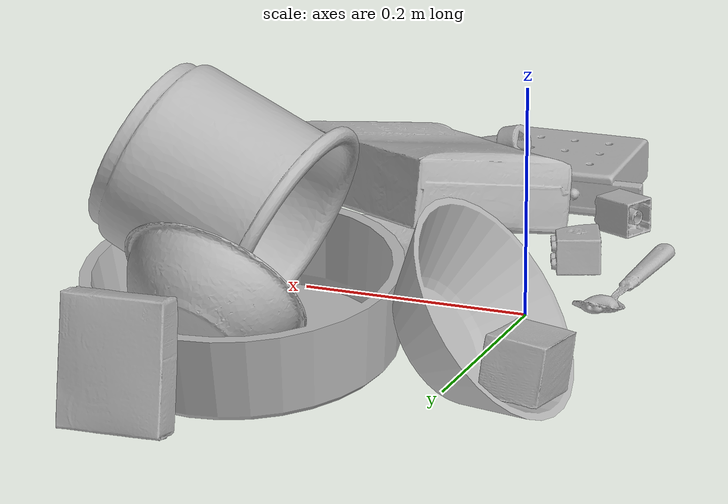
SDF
<sdf version="1.4">
  <world name="default">
    <light name="light1" type="point">
      <pose>0 0 1 0 0 0</pose>
      <diffuse>3 3 3 1</diffuse>
      <specular>3 3 3 1</specular>
    </light>
    <light name="light2" type="point">
      <pose>0 0.5 2 0 0 0</pose>
      <diffuse>1 1 1 1</diffuse>
      <specular>1 1 1 1</specular>
    </light>
    <light name="light3" type="point">
      <pose>0 0.5 2 0 0 0</pose>
      <diffuse>3 3 3 1</diffuse>
      <specular>3 3 3 1</specular>
    </light>
    <scene>
      <ambient>0.7 0.7 0.7</ambient>
    </scene>
    <model name="plate1">
      <link name="link_plate1">
        <collision name="default">
          <geometry>
            <mesh>
              <uri>model://pan_tefal/collision_meshes/collision.obj</uri>
              <scale>1.0 1.0 1.0</scale>
            </mesh>
          </geometry>
          <surface>
            <friction>
              <ode>
                <mu>0.5</mu>
                <mu2>0.5</mu2>
              </ode>
            </friction>
          <contact>
        <ode>
            <max_vel>0</max_vel>
            <min_depth>0.0001</min_depth>
            <kp>1e8</kp>
        </ode>
    </contact></surface>
        </collision>
        <visual name="default">
          <geometry>
            <mesh>
              <uri>model://pan_tefal/visual_meshes/visual.dae</uri>
              <scale>1.0 1.0 1.0</scale>
            </mesh>
          </geometry>
        </visual>
        <inertial>
          <mass>0.7050602436065674</mass>
          <pose>-0.00018002082651946694 3.279098018538207e-05 -0.008514933288097382 0.0008190340203057913 -0.0003301288692481796 -0.3318720847028622</pose>
          <inertia>
            <ixx>0.0048669963</ixx>
            <iyy>0.0048983735</iyy>
            <izz>0.008959204</izz>
            <ixy>0</ixy>
            <ixz>0</ixz>
            <iyz>0</iyz>
          </inertia>
        </inertial>
      </link>
      <pose>0.1667245626449585 0.21156488358974457 0.05297214165329933 0.07648127627857165 -0.11169657825145546 -2.2026846459983496</pose>
    </model>
    <model name="plate2">
      <link name="link_plate2">
        <collision name="default">
          <geometry>
            <mesh>
              <uri>model://plate/collision_meshes/collision.obj</uri>
              <scale>1.0 1.0 1.0</scale>
            </mesh>
          </geometry>
          <surface>
            <friction>
              <ode>
                <mu>0.5</mu>
                <mu2>0.5</mu2>
              </ode>
            </friction>
          <contact>
        <ode>
            <max_vel>0</max_vel>
            <min_depth>0.0001</min_depth>
            <kp>1e8</kp>
        </ode>
    </contact></surface>
        </collision>
        <visual name="default">
          <geometry>
            <mesh>
              <uri>model://plate/visual_meshes/visual.dae</uri>
              <scale>1.0 1.0 1.0</scale>
            </mesh>
          </geometry>
        </visual>
        <inertial>
          <mass>0.2442774623632431</mass>
          <pose>-0.0006044568726792932 0.0002782584633678198 -0.0010561984963715076 0.0022187778178748897 -0.0032254919076997847 0.45261061169843664</pose>
          <inertia>
            <ixx>0.0011427345</ixx>
            <iyy>0.001131805</iyy>
            <izz>0.002235018</izz>
            <ixy>0</ixy>
            <ixz>0</ixz>
            <iyz>0</iyz>
          </inertia>
        </inertial>
      </link>
      <pose>0.15857866406440735 -0.006986021995544434 0.013747020624577999 0.00011992139079804168 -0.0001266197579498605 -0.7818674260860036</pose>
    </model>
    <model name="bowl1">
      <link name="link_bowl1">
        <collision name="default">
          <geometry>
            <mesh>
              <uri>model://bowl_a/collision_meshes/collision.obj</uri>
              <scale>1.0 1.0 1.0</scale>
            </mesh>
          </geometry>
          <surface>
            <friction>
              <ode>
                <mu>0.5</mu>
                <mu2>0.5</mu2>
              </ode>
            </friction>
          <contact>
        <ode>
            <max_vel>0</max_vel>
            <min_depth>0.0001</min_depth>
            <kp>1e8</kp>
        </ode>
    </contact></surface>
        </collision>
        <visual name="default">
          <geometry>
            <mesh>
              <uri>model://bowl_a/visual_meshes/visual.dae</uri>
              <scale>1.0 1.0 1.0</scale>
            </mesh>
          </geometry>
        </visual>
        <inertial>
          <mass>0.4025156497955322</mass>
          <pose>0.00027867371682077646 4.731032458948903e-05 -0.0013765298062935472 -0.00098054011869292 -0.0010938175729232503 -0.19123339485915475</pose>
          <inertia>
            <ixx>0.0011459808</ixx>
            <iyy>0.0011530165</iyy>
            <izz>0.0020381706</izz>
            <ixy>0</ixy>
            <ixz>0</ixz>
            <iyz>0</iyz>
          </inertia>
        </inertial>
      </link>
      <pose>-0.02338222600519657 0.20773747563362122 0.06379034370183945 -0.9499365742733745 0.17284497439311802 1.643780484992418</pose>
    </model>
    <model name="bowl2">
      <link name="link_bowl2">
        <collision name="default">
          <geometry>
            <mesh>
              <uri>model://bowl/collision_meshes/collision.obj</uri>
              <scale>1.0 1.0 1.0</scale>
            </mesh>
          </geometry>
          <surface>
            <friction>
              <ode>
                <mu>0.5</mu>
                <mu2>0.5</mu2>
              </ode>
            </friction>
          <contact>
        <ode>
            <max_vel>0</max_vel>
            <min_depth>0.0001</min_depth>
            <kp>1e8</kp>
        </ode>
    </contact></surface>
        </collision>
        <visual name="default">
          <geometry>
            <mesh>
              <uri>model://bowl/visual_meshes/visual.dae</uri>
              <scale>1.0 1.0 1.0</scale>
            </mesh>
          </geometry>
        </visual>
        <inertial>
          <mass>0.04694162309169769</mass>
          <pose>0.00020445318659767509 -0.001030211104080081 -0.0008042642730288208 -0.01576400215318024 0.014546874726031786 0.7140460761636136</pose>
          <inertia>
            <ixx>0.0001078286</ixx>
            <iyy>0.000105419305</iyy>
            <izz>0.00018140484</izz>
            <ixy>0</ixy>
            <ixz>0</ixz>
            <iyz>0</iyz>
          </inertia>
        </inertial>
      </link>
      <pose>0.1757746934890747 0.27720028162002563 0.07318631559610367 -0.7741207752139906 0.5643080446146739 -2.8110628843697825</pose>
    </model>
    <model name="silverware1">
      <link name="link_silverware1">
        <collision name="default">
          <geometry>
            <mesh>
              <uri>model://spoon/collision_meshes/collision.obj</uri>
              <scale>1.0 1.0 1.0</scale>
            </mesh>
          </geometry>
          <surface>
            <friction>
              <ode>
                <mu>0.5</mu>
                <mu2>0.5</mu2>
              </ode>
            </friction>
          <contact>
        <ode>
            <max_vel>0</max_vel>
            <min_depth>0.0001</min_depth>
            <kp>1e8</kp>
        </ode>
    </contact></surface>
        </collision>
        <visual name="default">
          <geometry>
            <mesh>
              <uri>model://spoon/visual_meshes/visual.dae</uri>
              <scale>1.0 1.0 1.0</scale>
            </mesh>
          </geometry>
        </visual>
        <inertial>
          <mass>0.03710600733757019</mass>
          <pose>-0.005526318680495024 -0.0016034168656915426 -0.0007271650829352438 0.03521602429168162 -0.03906583039209626 0.006150612964611125</pose>
          <inertia>
            <ixx>2.0638956e-06</ixx>
            <iyy>0.00014118708</iyy>
            <izz>0.00014220492</izz>
            <ixy>0</ixy>
            <ixz>0</ixz>
            <iyz>0</iyz>
          </inertia>
        </inertial>
      </link>
      <pose>-0.06256874650716782 -0.0880306139588356 0.008385267108678818 0.006731752698009723 0.02689299836124548 1.5136395468085182</pose>
    </model>
    <model name="box1">
      <link name="link_box1">
        <collision name="default">
          <geometry>
            <mesh>
              <uri>model://cracker_box/collision_meshes/collision.obj</uri>
              <scale>1.0 1.0 1.0</scale>
            </mesh>
          </geometry>
          <surface>
            <friction>
              <ode>
                <mu>0.5</mu>
                <mu2>0.5</mu2>
              </ode>
            </friction>
          <contact>
        <ode>
            <max_vel>0</max_vel>
            <min_depth>0.0001</min_depth>
            <kp>1e8</kp>
        </ode>
    </contact></surface>
        </collision>
        <visual name="default">
          <geometry>
            <mesh>
              <uri>model://cracker_box/visual_meshes/visual.dae</uri>
              <scale>1.0 1.0 1.0</scale>
            </mesh>
          </geometry>
        </visual>
        <inertial>
          <mass>2.252173662185669</mass>
          <pose>0.0009464137838222086 0.0002543425071053207 -0.0017029535956680775 -0.000316207513865998 -0.011106489600465836 0.0025467954670329632</pose>
          <inertia>
            <ixx>0.0057285246</ixx>
            <iyy>0.00945892</iyy>
            <izz>0.013498746</izz>
            <ixy>0</ixy>
            <ixz>0</ixz>
            <iyz>0</iyz>
          </inertia>
        </inertial>
      </link>
      <pose>0.15077824890613556 -0.1707879900932312 0.056561361998319626 -0.18531506571721515 -0.08516170320143848 2.4924771041828673</pose>
    </model>
    <model name="box2">
      <link name="link_box2">
        <collision name="default">
          <geometry>
            <mesh>
              <uri>model://pudding_box/collision_meshes/collision.obj</uri>
              <scale>1.0 1.0 1.0</scale>
            </mesh>
          </geometry>
          <surface>
            <friction>
              <ode>
                <mu>0.5</mu>
                <mu2>0.5</mu2>
              </ode>
            </friction>
          <contact>
        <ode>
            <max_vel>0</max_vel>
            <min_depth>0.0001</min_depth>
            <kp>1e8</kp>
        </ode>
    </contact></surface>
        </collision>
        <visual name="default">
          <geometry>
            <mesh>
              <uri>model://pudding_box/visual_meshes/visual.dae</uri>
              <scale>1.0 1.0 1.0</scale>
            </mesh>
          </geometry>
        </visual>
        <inertial>
          <mass>0.38795164227485657</mass>
          <pose>0.0004894821904599667 0.0008067885646596551 -0.0005188827635720372 0.005213102258195884 -0.006603798723254801 0.020079825158131615</pose>
          <inertia>
            <ixx>0.00043855933</ixx>
            <iyy>0.00029506587</iyy>
            <izz>0.0006476475</izz>
            <ixy>0</ixy>
            <ixz>0</ixz>
            <iyz>0</iyz>
          </inertia>
        </inertial>
      </link>
      <pose>0.2056407928466797 0.37396034598350525 0.05675104632973671 1.3877224353187723 -0.011575297615629332 -3.1195736403092424</pose>
    </model>
    <model name="cup1">
      <link name="link_cup1">
        <collision name="default">
          <geometry>
            <mesh>
              <uri>model://i_cups/collision_meshes/collision.obj</uri>
              <scale>2.0 2.0 2.0</scale>
            </mesh>
          </geometry>
          <surface>
            <friction>
              <ode>
                <mu>0.5</mu>
                <mu2>0.5</mu2>
              </ode>
            </friction>
          <contact>
        <ode>
            <max_vel>0</max_vel>
            <min_depth>0.0001</min_depth>
            <kp>1e8</kp>
        </ode>
    </contact></surface>
        </collision>
        <visual name="default">
          <geometry>
            <mesh>
              <uri>model://i_cups/visual_meshes/visual.dae</uri>
              <scale>2.0 2.0 2.0</scale>
            </mesh>
          </geometry>
        </visual>
        <inertial>
          <mass>0.8781275153160095</mass>
          <pose>0.00022480404004454613 0.0003359464171808213 -0.0017158013070002198 -0.028983801808433914 -0.03987279960401974 -0.34589629987983705</pose>
          <inertia>
            <ixx>0.004863122</ixx>
            <iyy>0.004905971</iyy>
            <izz>0.005435325</izz>
            <ixy>0</ixy>
            <ixz>0</ixz>
            <iyz>0</iyz>
          </inertia>
        </inertial>
      </link>
      <pose>0.19634944200515747 0.1968957781791687 0.14769236743450165 -2.066458310883997 0.5133265459575764 1.2541552078386227</pose>
    </model>
    <model name="silverware2">
      <link name="link_silverware2">
        <collision name="default">
          <geometry>
            <mesh>
              <uri>model://fork/collision_meshes/collision.obj</uri>
              <scale>1.0 1.0 1.0</scale>
            </mesh>
          </geometry>
          <surface>
            <friction>
              <ode>
                <mu>0.5</mu>
                <mu2>0.5</mu2>
              </ode>
            </friction>
          <contact>
        <ode>
            <max_vel>0</max_vel>
            <min_depth>0.0001</min_depth>
            <kp>1e8</kp>
        </ode>
    </contact></surface>
        </collision>
        <visual name="default">
          <geometry>
            <mesh>
              <uri>model://fork/visual_meshes/visual.dae</uri>
              <scale>1.0 1.0 1.0</scale>
            </mesh>
          </geometry>
        </visual>
        <inertial>
          <mass>0.027322283014655113</mass>
          <pose>-0.02957003377377987 0.0004658822435885668 0.0003218860656488687 -0.013551502868568713 -0.01097783467120204 0.01445389601768567</pose>
          <inertia>
            <ixx>9.578007e-07</ixx>
            <iyy>7.133063e-05</iyy>
            <izz>7.175903e-05</izz>
            <ixy>0</ixy>
            <ixz>0</ixz>
            <iyz>0</iyz>
          </inertia>
        </inertial>
      </link>
      <pose>0.21872927248477936 0.04685097560286522 0.023620612919330597 3.138055908695428 -0.13763829312660353 0.9394169154694763</pose>
    </model>
    <model name="silverware3">
      <link name="link_silverware3">
        <collision name="default">
          <geometry>
            <mesh>
              <uri>model://knife/collision_meshes/collision.obj</uri>
              <scale>1.0 1.0 1.0</scale>
            </mesh>
          </geometry>
          <surface>
            <friction>
              <ode>
                <mu>0.5</mu>
                <mu2>0.5</mu2>
              </ode>
            </friction>
          <contact>
        <ode>
            <max_vel>0</max_vel>
            <min_depth>0.0001</min_depth>
            <kp>1e8</kp>
        </ode>
    </contact></surface>
        </collision>
        <visual name="default">
          <geometry>
            <mesh>
              <uri>model://knife/visual_meshes/visual.dae</uri>
              <scale>1.0 1.0 1.0</scale>
            </mesh>
          </geometry>
        </visual>
        <inertial>
          <mass>0.036400385200977325</mass>
          <pose>-0.02378525584936142 0.0015275126788765192 5.0620175898075104e-05 0.07305876248658423 0.017248417790611748 -0.007409819472147862</pose>
          <inertia>
            <ixx>1.0331904e-06</ixx>
            <iyy>0.00013984439</iyy>
            <izz>0.00014017712</izz>
            <ixy>0</ixy>
            <ixz>0</ixz>
            <iyz>0</iyz>
          </inertia>
        </inertial>
      </link>
      <pose>0.08254428207874298 0.0810835063457489 0.029015326872467995 2.66257398149613 -0.17790834924080992 2.7297971196261566</pose>
    </model>
    <model name="toy1">
      <link name="link_toy1">
        <collision name="default">
          <geometry>
            <mesh>
              <uri>model://d_lego_duplo/collision_meshes/collision.obj</uri>
              <scale>1.0 1.0 1.0</scale>
            </mesh>
          </geometry>
          <surface>
            <friction>
              <ode>
                <mu>0.5</mu>
                <mu2>0.5</mu2>
              </ode>
            </friction>
          <contact>
        <ode>
            <max_vel>0</max_vel>
            <min_depth>0.0001</min_depth>
            <kp>1e8</kp>
        </ode>
    </contact></surface>
        </collision>
        <visual name="default">
          <geometry>
            <mesh>
              <uri>model://d_lego_duplo/visual_meshes/visual.dae</uri>
              <scale>1.0 1.0 1.0</scale>
            </mesh>
          </geometry>
        </visual>
        <inertial>
          <mass>0.060466669499874115</mass>
          <pose>0.002830563113093376 0.00016366162162739784 0.0008589806384406984 0.08010949306805684 -0.3835523000845375 0.0010296676643477064</pose>
          <inertia>
            <ixx>1.1705457e-05</ixx>
            <iyy>1.6613216e-05</iyy>
            <izz>1.6021117e-05</izz>
            <ixy>0</ixy>
            <ixz>0</ixz>
            <iyz>0</iyz>
          </inertia>
        </inertial>
      </link>
      <pose>0.0018894323147833347 -0.1341019719839096 0.016249649226665497 1.5793388464581144 -0.01312052791300224 1.9468144997727856</pose>
    </model>
    <model name="toy2">
      <link name="link_toy2">
        <collision name="default">
          <geometry>
            <mesh>
              <uri>model://b_lego_duplo/collision_meshes/collision.obj</uri>
              <scale>1.0 1.0 1.0</scale>
            </mesh>
          </geometry>
          <surface>
            <friction>
              <ode>
                <mu>0.5</mu>
                <mu2>0.5</mu2>
              </ode>
            </friction>
          <contact>
        <ode>
            <max_vel>0</max_vel>
            <min_depth>0.0001</min_depth>
            <kp>1e8</kp>
        </ode>
    </contact></surface>
        </collision>
        <visual name="default">
          <geometry>
            <mesh>
              <uri>model://b_lego_duplo/visual_meshes/visual.dae</uri>
              <scale>1.0 1.0 1.0</scale>
            </mesh>
          </geometry>
        </visual>
        <inertial>
          <mass>0.030077241361141205</mass>
          <pose>-0.00011053079651901498 -9.15232340048533e-06 0.0019294286612421274 -0.037494862621914114 -0.026354003688684128 0.4518993950044185</pose>
          <inertia>
            <ixx>6.155532e-06</ixx>
            <iyy>6.196912e-06</iyy>
            <izz>5.4843786e-06</izz>
            <ixy>0</ixy>
            <ixz>0</ixz>
            <iyz>0</iyz>
          </inertia>
        </inertial>
      </link>
      <pose>-0.003292023204267025 -0.24641256034374237 0.01612114906311035 1.5723690350631054 -0.012007327734342852 1.1701511118795203</pose>
    </model>
    <model name="toy3">
      <link name="link_toy3">
        <collision name="default">
          <geometry>
            <mesh>
              <uri>model://nine_hole_peg_test/collision_meshes/collision.obj</uri>
              <scale>1.0 1.0 1.0</scale>
            </mesh>
          </geometry>
          <surface>
            <friction>
              <ode>
                <mu>0.5</mu>
                <mu2>0.5</mu2>
              </ode>
            </friction>
          <contact>
        <ode>
            <max_vel>0</max_vel>
            <min_depth>0.0001</min_depth>
            <kp>1e8</kp>
        </ode>
    </contact></surface>
        </collision>
        <visual name="default">
          <geometry>
            <mesh>
              <uri>model://nine_hole_peg_test/visual_meshes/visual.dae</uri>
              <scale>1.0 1.0 1.0</scale>
            </mesh>
          </geometry>
        </visual>
        <inertial>
          <mass>0.9411391019821167</mass>
          <pose>-0.0046173869632184505 -0.009647615253925323 2.646069333422929e-05 -0.0014666795036135398 0.0007194176186147546 -0.6342417663820423</pose>
          <inertia>
            <ixx>0.0014716258</ixx>
            <iyy>0.0013740414</iyy>
            <izz>0.0025787223</izz>
            <ixy>0</ixy>
            <ixz>0</ixz>
            <iyz>0</iyz>
          </inertia>
        </inertial>
      </link>
      <pose>0.06926335394382477 -0.3262248635292053 0.020770994946360588 2.9285400326983794e-08 -1.1270915220913765e-09 1.6252603795672929</pose>
    </model>
    <model name="toy4">
      <link name="link_toy4">
        <collision name="default">
          <geometry>
            <mesh>
              <uri>model://foam_brick/collision_meshes/collision.obj</uri>
              <scale>1.0 1.0 1.0</scale>
            </mesh>
          </geometry>
          <surface>
            <friction>
              <ode>
                <mu>0.5</mu>
                <mu2>0.5</mu2>
              </ode>
            </friction>
          <contact>
        <ode>
            <max_vel>0</max_vel>
            <min_depth>0.0001</min_depth>
            <kp>1e8</kp>
        </ode>
    </contact></surface>
        </collision>
        <visual name="default">
          <geometry>
            <mesh>
              <uri>model://foam_brick/visual_meshes/visual.dae</uri>
              <scale>1.0 1.0 1.0</scale>
            </mesh>
          </geometry>
        </visual>
        <inertial>
          <mass>0.1527709662914276</mass>
          <pose>-0.00025224717683158815 0.0003458428254816681 -0.00025321016437374055 -0.29402015796081304 0.017274438268763303 -0.0007449889855682301</pose>
          <inertia>
            <ixx>6.673321e-05</ixx>
            <iyy>0.00010654301</iyy>
            <izz>0.00010789704</izz>
            <ixy>0</ixy>
            <ixz>0</ixz>
            <iyz>0</iyz>
          </inertia>
        </inertial>
      </link>
      <pose>-0.07958100736141205 0.22055965662002563 0.04253365844488144 3.0363200082589565 -0.14300934669171292 1.5703645814559575</pose>
    </model>
    <model name="toy5">
      <link name="link_toy5">
        <collision name="default">
          <geometry>
            <mesh>
              <uri>model://e_toy_airplane/collision_meshes/collision.obj</uri>
              <scale>1.0 1.0 1.0</scale>
            </mesh>
          </geometry>
          <surface>
            <friction>
              <ode>
                <mu>0.5</mu>
                <mu2>0.5</mu2>
              </ode>
            </friction>
          <contact>
        <ode>
            <max_vel>0</max_vel>
            <min_depth>0.0001</min_depth>
            <kp>1e8</kp>
        </ode>
    </contact></surface>
        </collision>
        <visual name="default">
          <geometry>
            <mesh>
              <uri>model://e_toy_airplane/visual_meshes/visual.dae</uri>
              <scale>1.0 1.0 1.0</scale>
            </mesh>
          </geometry>
        </visual>
        <inertial>
          <mass>0.01976589486002922</mass>
          <pose>0.00011740453192032874 -2.2483010980067775e-05 -0.011187207885086536 0.005518504435964777 0.009228288570086122 0.15041432989491213</pose>
          <inertia>
            <ixx>6.0327766e-06</ixx>
            <iyy>5.971064e-06</iyy>
            <izz>1.813087e-06</izz>
            <ixy>0</ixy>
            <ixz>0</ixz>
            <iyz>0</iyz>
          </inertia>
        </inertial>
      </link>
      <pose>0.13551850616931915 -0.28784650564193726 0.052221380174160004 -1.8436648194431253 0.2684126633630347 -1.808474480933726</pose>
    </model>
  <physics type="ode">
      <max_contacts>50</max_contacts>
      <ode>
        <solver>
          <type>quick</type>
          <iters>75</iters>
        </solver>
        <constraints>
          <contact_max_correcting_vel>0</contact_max_correcting_vel>
          <contact_surface_layer>0</contact_surface_layer>
        </constraints>
      </ode>
    </physics></world>
</sdf>
